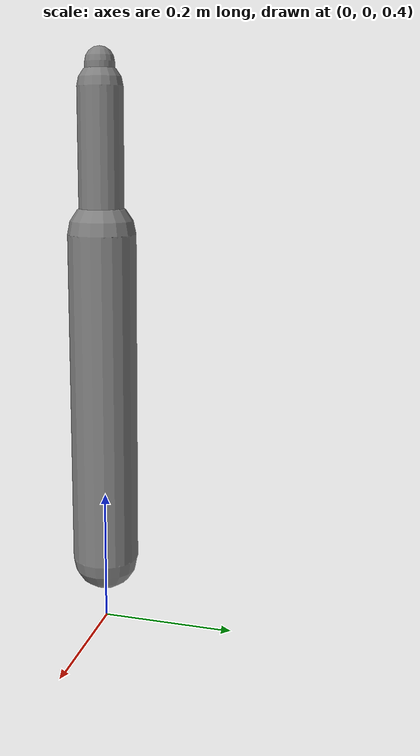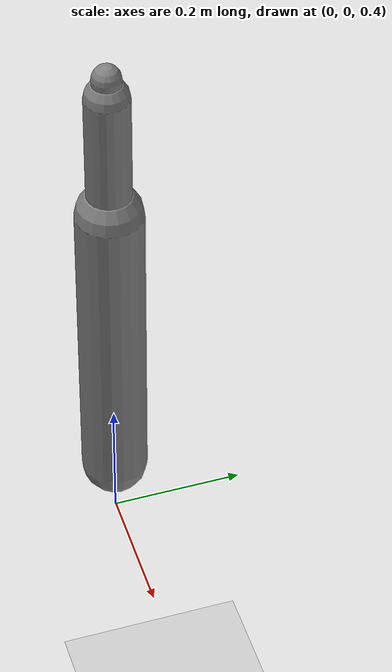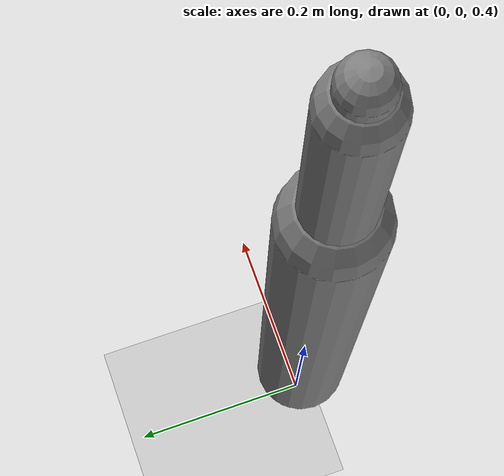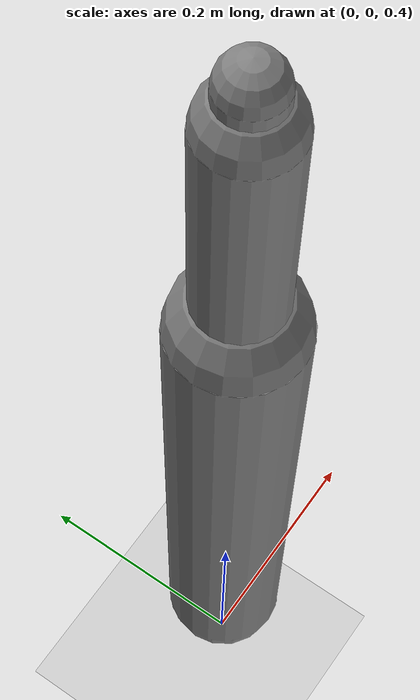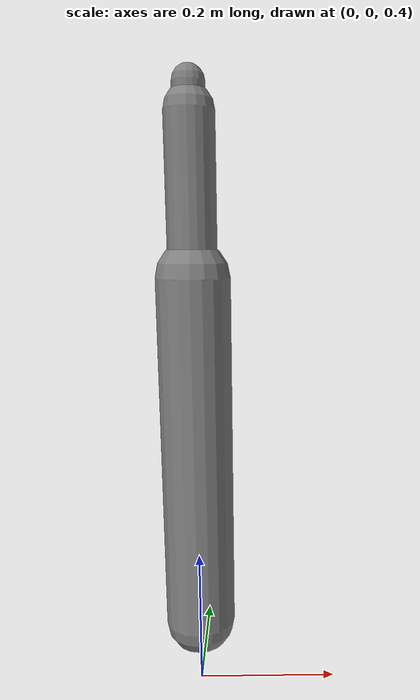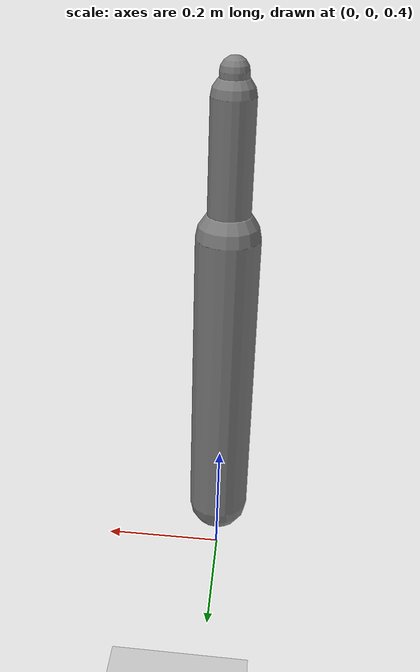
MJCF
<?xml version='1.0' encoding='UTF-8'?>
<mujoco model="RobotModel">
  <option gravity="0 0 -9.81" timestep="0.002" solver="CG" iterations="500" integrator="Euler"/>
  <worldbody>
    <geom name="Floor" type="plane" size="10 10 0.1" pos="0 0 0" rgba="0.8 0.8 0.8 1"/>
    <body name="Limb0" pos="0 0 0.5">
      <geom type="capsule" fromto="0 0 0 0 0 0.5" size="0.05" density="1000" contype="0" conaffinity="0"/>
      <body name="Limb0_fe268f32" pos="0 0 0.5">
        <geom type="capsule" fromto="0 0 0 0 0 0.24003364799208307" size="0.02136065637030168" density="800" contype="0" conaffinity="0"/>
        <joint name="Joint_Limb0_Limb0_fe268f32_0" type="hinge" axis="1 0 0" range="-60 60"/>
      </body>
      <body name="Limb1_fe268f32" pos="0 0 0.5">
        <geom type="capsule" fromto="0 0 0 0 0 0.20701607233673047" size="0.03293948743202217" density="800" contype="0" conaffinity="0"/>
        <joint name="Joint_Limb0_Limb1_fe268f32_0" type="hinge" axis="0 1 0" range="-60 60"/>
      </body>
    </body>
  </worldbody>
  <actuator>
    <position name="position_Actuator_Joint_Limb0_Limb0_fe268f32_0" joint="Joint_Limb0_Limb0_fe268f32_0" gear="1.0"/>
    <position name="position_Actuator_Joint_Limb0_Limb1_fe268f32_0" joint="Joint_Limb0_Limb1_fe268f32_0" gear="1.0"/>
  </actuator>
</mujoco>
